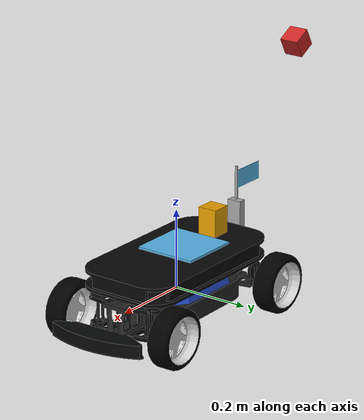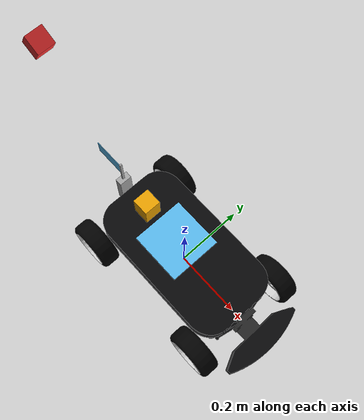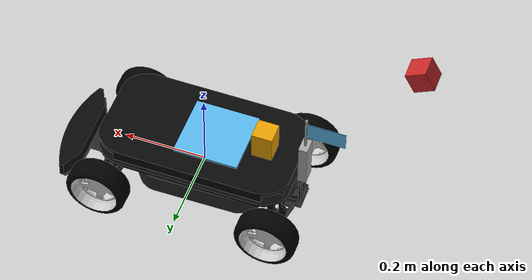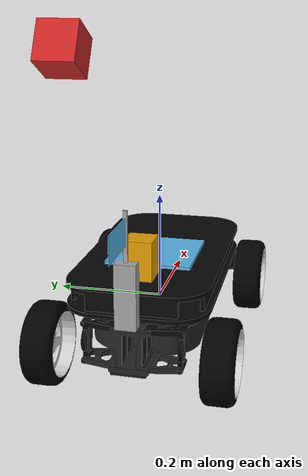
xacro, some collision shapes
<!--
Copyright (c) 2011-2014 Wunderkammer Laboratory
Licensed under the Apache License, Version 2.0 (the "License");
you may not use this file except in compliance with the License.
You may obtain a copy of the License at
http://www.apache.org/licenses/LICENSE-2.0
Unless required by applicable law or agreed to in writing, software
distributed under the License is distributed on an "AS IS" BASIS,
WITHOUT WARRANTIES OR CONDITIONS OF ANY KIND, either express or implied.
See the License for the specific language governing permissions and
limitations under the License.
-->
<?xml version="1.0"?>

<robot name="em_3905" xmlns:xacro="http://www.ros.org/wiki/xacro">
  <!-- Degree-to-radian conversions -->
  <xacro:property name="degrees_45" value="0.785398163"/>
  <xacro:property name="degrees_90" value="1.57079633"/>

  <!-- chassis_length is measured along the x axis, chassis_width
       along the y axis, and chassis_height along the z axis. -->
  <xacro:property name="chassis_length" value="0.258"/>
  <xacro:property name="chassis_width" value="0.168"/>
  <xacro:property name="chassis_height" value="0.05"/>
  <xacro:property name="chassis_mass" value="3.5"/>

  <xacro:property name="battery_x_offset" value="0.055"/>
  <xacro:property name="battery_dist" value="0.065"/>
  <xacro:property name="battery_comp_depth" value="0.02"/>
  <xacro:property name="battery_comp_angle" value="0.34906585"/>
  <xacro:property name="battery_length" value="0.16"/>
  <xacro:property name="battery_width" value="0.047"/>
  <xacro:property name="battery_height" value="0.024"/>
  <xacro:property name="battery_mass" value="0.5025"/>

  <xacro:property name="hub_dia" value="0.09652"/>
  <xacro:property name="tire_dia" value="0.14605"/>
  <xacro:property name="tire_width" value="0.0855"/>
  <xacro:property name="hex_hub_depth" value="0.01445"/>
  <xacro:property name="wheel_mass" value="0.29"/>

  <xacro:property name="wheelbase" value="0.42"/>
  <xacro:property name="hex_hub_dist" value="0.365"/>
  <xacro:property name="axle_length" value="0.03"/>
  <xacro:property name="wheel_travel" value="0.084"/>
  <xacro:property name="shock_z_offset" value="0.0655"/>

  <xacro:property name="shock_eff_limit" value="22.5106"/>
  <xacro:property name="shock_vel_limit" value="1000"/>

  <xacro:property name="axle_eff_limit" value="5.12766"/>
  <xacro:property name="axle_vel_limit" value="244.8696"/>

  <!-- These constants are used to simulate a Traxxas 2056 servo operated at
       6 V. servo_stall_torque is measured in N m. servo_no_load_speed is
       measured in rad/s. -->
  <xacro:property name="servo_stall_torque" value="0.5649"/>
  <xacro:property name="servo_no_load_speed" value="4.553"/>

  <!-- Null inertial element. This is needed to make the model work with
       Gazebo. -->
  <xacro:macro name="null_inertial">
    <inertial>
      <mass value="0.001"/>
      <inertia ixx="0.001" ixy="0" ixz="0" iyy="0.001" iyz="0" izz="0.001"/>
    </inertial>
  </xacro:macro>

  <!-- Inertia of a solid cuboid. Width is measured along the x axis, depth
       along the y axis, and height along the z axis. -->
  <xacro:macro name="solid_cuboid_inertial"
               params="width depth height mass *origin">
    <inertial>
      <xacro:insert_block name="origin"/>
      <mass value="${mass}"/>
      <inertia ixx="${mass * (depth * depth + height * height) / 12}"
               ixy="0" ixz="0"
               iyy="${mass * (width * width + height * height) / 12}"
               iyz="0"
               izz="${mass * (width * width + depth * depth) / 12}"/>
    </inertial>
  </xacro:macro>

  <xacro:macro name="thick_walled_tube_inertial"
               params="inner_rad outer_rad height mass">
    <inertial>
      <mass value="${mass}"/>
      <inertia ixx="${(1 / 12) * mass * (3 * (inner_rad * inner_rad +
                    outer_rad * outer_rad) + height * height)}"
               ixy="0" ixz="0"
               iyy="${(1 / 12) * mass * (3 * (inner_rad * inner_rad +
                    outer_rad * outer_rad) + height * height)}"
               iyz="0"
               izz="${mass * (inner_rad * inner_rad +
                    outer_rad * outer_rad) / 2}"/>
    </inertial>
  </xacro:macro>

  <!-- Battery -->
  <xacro:macro name="battery" params="prefix reflect">
    <joint name="chassis_to_${prefix}_battery" type="fixed">
      <parent link="chassis"/>
      <child link="${prefix}_battery_offset"/>
      <origin xyz="${battery_x_offset - battery_length / 2}
                   ${reflect * battery_dist / 2}
                   0"
              rpy="${reflect * battery_comp_angle} 0 0"/>
    </joint>

    <link name="${prefix}_battery_offset">
      <xacro:null_inertial/>
    </link>
    <joint name="offset_to_${prefix}_battery" type="fixed">
      <parent link="${prefix}_battery_offset"/>
      <child link="${prefix}_battery"/>
      <origin xyz="0
                   ${reflect * battery_width / 2}
                   ${(battery_height / 2) - battery_comp_depth}"/>
    </joint>

    <link name="${prefix}_battery">
      <visual>
        <geometry>
          <box size="${battery_length} ${battery_width} ${battery_height}"/>
        </geometry>
        <material name="battery_mat"/>
      </visual>

      <collision>
        <geometry>
          <box size="${battery_length} ${battery_width} ${battery_height}"/>
        </geometry>
      </collision>

      <xacro:solid_cuboid_inertial
         width="${battery_length}" depth="${battery_width}"
         height="${battery_height}" mass="${battery_mass}">
        <origin/>
      </xacro:solid_cuboid_inertial>
    </link>

    <gazebo reference="${prefix}_battery">
      <material>Gazebo/Blue</material>
    </gazebo>
  </xacro:macro>

  <!-- Shock absorber -->
  <xacro:macro name="shock"
               params="lr_prefix fr_prefix lr_reflect fr_reflect child">
    <joint name="${lr_prefix}_${fr_prefix}_shock" type="prismatic">
      <parent link="chassis"/>
      <child link="${child}"/>

      <origin xyz="${fr_reflect * wheelbase / 2}
                   ${lr_reflect * ((hex_hub_dist / 2) - axle_length)}
                   ${(wheel_travel / 2) - shock_z_offset}"/>
      <axis xyz="0 0 -1"/>
      <limit lower="${-wheel_travel / 2}" upper="${wheel_travel / 2}"
             effort="${shock_eff_limit}" velocity="${shock_vel_limit}"/>
    </joint>
    <transmission name="${lr_prefix}_${fr_prefix}_shock_trans">
      <type>transmission_interface/SimpleTransmission</type>
      <joint name="${lr_prefix}_${fr_prefix}_shock">
        <hardwareInterface>EffortJointInterface</hardwareInterface>
      </joint>
      <actuator name="${lr_prefix}_${fr_prefix}_shock_act">
        <!-- This hardwareInterface element exists for compatibility
             with ROS Hydro. -->
        <hardwareInterface>EffortJointInterface</hardwareInterface>
        <mechanicalReduction>1</mechanicalReduction>
      </actuator>
    </transmission>
  </xacro:macro>

  <!-- The "wheel" macro defines an axle carrier, axle, and wheel. -->
  <xacro:macro name="wheel" params="lr_prefix fr_prefix lr_reflect">
    <link name="${lr_prefix}_${fr_prefix}_axle_carrier">
      <xacro:null_inertial/>
    </link>

    <!-- The left and right axles have the same axis so that identical
         rotation values cause the wheels to rotate in the same direction. -->
    <joint name="${lr_prefix}_${fr_prefix}_axle" type="continuous">
      <parent link="${lr_prefix}_${fr_prefix}_axle_carrier"/>
      <child link="${lr_prefix}_${fr_prefix}_wheel"/>
      <origin rpy="${degrees_90} 0 0"/>
      <axis xyz="0 0 -1"/>
      <limit effort="${axle_eff_limit}" velocity="${axle_vel_limit}"/>
    </joint>
    <transmission name="${lr_prefix}_${fr_prefix}_axle_trans">
      <type>transmission_interface/SimpleTransmission</type>
      <joint name="${lr_prefix}_${fr_prefix}_axle">
        <hardwareInterface>EffortJointInterface</hardwareInterface>
      </joint>
      <actuator name="${lr_prefix}_${fr_prefix}_axle_act">
        <!-- This hardwareInterface element exists for compatibility
             with ROS Hydro. -->
        <hardwareInterface>EffortJointInterface</hardwareInterface>
        <mechanicalReduction>1</mechanicalReduction>
      </actuator>
    </transmission>

    <link name="${lr_prefix}_${fr_prefix}_wheel">
      <visual>
        <origin xyz="0
                     ${lr_reflect * (axle_length - (tire_width /
                     2 - hex_hub_depth))}
                     0"/>
        <geometry>
          <mesh filename="package://ackermann_vehicle_description/meshes/tire.dae"/>
        </geometry>
      </visual>

      <collision>
        <origin xyz="0
                     ${lr_reflect * (axle_length - (tire_width /
                     2 - hex_hub_depth))}
                     0"/>
        <geometry>
          <cylinder radius="${tire_dia / 2}" length="${tire_width}"/>
        </geometry>
      </collision>

      <xacro:thick_walled_tube_inertial
          inner_rad="${hub_dia / 2}" outer_rad="${tire_dia / 2}"
          height="${tire_width}" mass="${wheel_mass}"/>
    </link>
  </xacro:macro>

  <!-- Front wheel -->
  <xacro:macro name="front_wheel"
               params="lr_prefix fr_prefix lr_reflect fr_reflect">
    <xacro:shock lr_prefix="${lr_prefix}" fr_prefix="${fr_prefix}"
                 lr_reflect="${lr_reflect}" fr_reflect="${fr_reflect}"
                 child="${lr_prefix}_steering_link"/>

    <link name="${lr_prefix}_steering_link">
      <xacro:null_inertial/>
    </link>

    <joint name="${lr_prefix}_steering_joint" type="revolute">
      <parent link="${lr_prefix}_steering_link"/>
      <child link="${lr_prefix}_${fr_prefix}_axle_carrier"/>
      <axis xyz="0 0 1"/>
      <limit lower="${-degrees_45}" upper="${degrees_45}"
             effort="${servo_stall_torque}" velocity="${servo_no_load_speed}"/>
    </joint>
    <transmission name="${lr_prefix}_steering_trans">
      <type>transmission_interface/SimpleTransmission</type>
      <joint name="${lr_prefix}_steering_joint">
        <hardwareInterface>EffortJointInterface</hardwareInterface>
      </joint>
      <actuator name="${lr_prefix}_steering_act">
        <!-- This hardwareInterface element exists for compatibility
             with ROS Hydro. -->
        <hardwareInterface>EffortJointInterface</hardwareInterface>
        <mechanicalReduction>1</mechanicalReduction>
      </actuator>
    </transmission>

    <xacro:wheel lr_prefix="${lr_prefix}" fr_prefix="${fr_prefix}"
                 lr_reflect="${lr_reflect}"/>
  </xacro:macro>

  <!-- Rear wheel -->
  <xacro:macro name="rear_wheel"
               params="lr_prefix fr_prefix lr_reflect fr_reflect">
    <xacro:shock lr_prefix="${lr_prefix}" fr_prefix="${fr_prefix}"
                 lr_reflect="${lr_reflect}" fr_reflect="${fr_reflect}"
                 child="${lr_prefix}_${fr_prefix}_axle_carrier"/>
    <xacro:wheel lr_prefix="${lr_prefix}" fr_prefix="${fr_prefix}"
                 lr_reflect="${lr_reflect}"/>
  </xacro:macro>

  <!-- base_link must have geometry so that its axes can be displayed in
       rviz. -->
  <link name="base_link">
    <visual>
      <geometry>
        <box size="0.01 0.01 0.01"/>
      </geometry>
      <material name="chassis_mat"/>
    </visual>
  </link>
  <gazebo reference="base_link">
    <material>Gazebo/Grey</material>
  </gazebo>

  <!-- Chassis -->
  <link name="chassis">
    <visual>
      <origin xyz="0 0 ${-chassis_height / 2}"/>
      <geometry>
        <!--box size="${chassis_length} ${chassis_width} ${chassis_height}"/-->
        <mesh filename="package://ackermann_vehicle_description/meshes/chassis.dae"/>
      </geometry>
    </visual>

    <collision>
      <origin xyz="0 0 ${-chassis_height / 2}"/>
      <geometry>
        <box size="${chassis_length} ${chassis_width} ${chassis_height}"/>
      </geometry>
    </collision>

    <xacro:solid_cuboid_inertial
        width="${chassis_length}" depth="${chassis_width}"
        height="${chassis_height}" mass="${chassis_mass}">
      <origin xyz="0 0 ${-chassis_height / 2}"/>
    </xacro:solid_cuboid_inertial>
  </link>

  <joint name="base_link_to_chassis" type="fixed">
    <parent link="base_link"/>
    <child link="chassis"/>
  </joint>

  <!-- Batteries -->
  <xacro:battery prefix="left" reflect="1"/>
  <xacro:battery prefix="right" reflect="-1"/>

  <!-- Wheels -->
  <xacro:front_wheel lr_prefix="left" fr_prefix="front"
                     lr_reflect="1" fr_reflect="1"/>
  <xacro:front_wheel lr_prefix="right" fr_prefix="front"
                     lr_reflect="-1" fr_reflect="1"/>
  <xacro:rear_wheel lr_prefix="left" fr_prefix="rear"
                    lr_reflect="1" fr_reflect="-1"/>
  <xacro:rear_wheel lr_prefix="right" fr_prefix="rear"
                    lr_reflect="-1" fr_reflect="-1"/>

  <gazebo>
    <plugin name="gazebo_ros_control" filename="libgazebo_ros_control.so"/>
  </gazebo>

  <link name="hokuyo_sensor_link" type="laser">
    <visual>
      <origin xyz="0 0 0" rpy="3.14 3.14 3.14"/>
      <geometry>
        <mesh filename="package://gazebo_plugins/test/multi_robot_scenario/meshes/laser/hokuyo.dae"/>
      </geometry>
    </visual>
    <collision>
      <origin xyz="0 0 0.0" />
      <geometry>
        <box size="0.05 0.05 0.07" />
      </geometry>
    </collision>
  </link>
  <joint name="laser_to_base" type="fixed">
    <origin xyz="-0.15 0 0.13"/>
    <parent link="base_link" />
    <child link="hokuyo_sensor_link"/>
  </joint>

  <gazebo reference="hokuyo_sensor_link">
    <sensor type="ray" name="laser">
      <pose>0 0 0 0 0 0</pose>
      <visualize>false</visualize>
      <update_rate>40</update_rate>
      <ray>
        <scan>
          <horizontal>
            <!-- The URG-04LX-UG01  has  683 steps with 0.35139 Degree resolution -->
            <samples>1080</samples>
            <resolution>1</resolution>
              <min_angle>-2.0944</min_angle> <!-- 120 Degree -->
              <max_angle>2.0944</max_angle>
          </horizontal>
        </scan>
        <range>
          <min>0.06</min> <!-- 0.06 from URG-04 specification -->
          <max>20.0</max>
          <resolution>0.01</resolution>
        </range>
        <noise>
          <type>gaussian</type>
          <mean>0.0</mean>
          <stddev>0.01</stddev>
        </noise>
      </ray>
      <plugin name="hokuyo_node" filename="libgazebo_ros_laser.so">
        <topicName>/scan</topicName>
        <frameName>laser</frameName>
      </plugin>
    </sensor>
  </gazebo>

  <link name="imu_sensor_link">
      <visual>
        <geometry>
          <box size="0.02 0.02 0.02"/>
        </geometry>
      </visual>
      <collision>
        <geometry>
          <box size="0.02 0.2 0.02"/>
        </geometry>
      </collision>
  </link>
  <joint name="imu_to_base" type="fixed">
      <origin xyz="0.08 0 0"/>
      <parent link="base_link" />
      <child link="imu_sensor_link"/>
  </joint>

  <gazebo>
    <plugin name="imu_plugin" filename="libgazebo_ros_imu.so">
        <alwaysOn>true</alwaysOn>
        <frameName>base_imu_link</frameName>
        <bodyName>imu_sensor_link</bodyName>
        <topicName>imu</topicName>
        <serviceName>imu_service</serviceName>
        <gaussianNoise>0.0</gaussianNoise>
        <updateRate>10.0</updateRate>
    </plugin>
  </gazebo>

  <!-- camera -->
  <xacro:property name="camera_link" value="0.05" /> <!-- Size of square 'camera' box -->
  <joint name="camera_joint" type="fixed">
    <axis xyz="0 1 0" />
    <origin xyz="-0.5 0 0.5" rpy="0 0.5 0"/>
    <parent link="base_link"/>
    <child link="camera_link"/>
  </joint>

  <!-- Camera -->
  <link name="camera_link">
    <collision>
      <origin xyz="0 0 0" rpy="0 0 0"/>
      <geometry>
    <box size="${camera_link} ${camera_link} ${camera_link}"/>
      </geometry>
    </collision>

    <visual>
      <origin xyz="0 0 0" rpy="0 0 0"/>
      <geometry>
    <box size="${camera_link} ${camera_link} ${camera_link}"/>
      </geometry>
      <material name="red"/>
    </visual>

    <inertial>
      <mass value="1e-5" />
      <origin xyz="0 0 0" rpy="0 0 0"/>
      <inertia ixx="1e-6" ixy="0" ixz="0" iyy="1e-6" iyz="0" izz="1e-6" />
    </inertial>
  </link>

  <gazebo reference="camera_link">
    <sensor type="camera" name="top_view">
      <update_rate>30.0</update_rate>
      <camera name="head">
        <horizontal_fov>1.3962634</horizontal_fov>
        <image>
          <width>640</width>
          <height>480</height>
          <format>R8G8B8</format>
        </image>
        <clip>
          <near>0.02</near>
          <far>300</far>
        </clip>
        <noise>
          <type>gaussian</type>
          <!-- Noise is sampled independently per pixel on each frame.
               That pixel's noise value is added to each of its color
               channels, which at that point lie in the range [0,1]. -->
          <mean>0.0</mean>
          <stddev>0.007</stddev>
        </noise>
      </camera>
      <plugin name="camera_controller" filename="libgazebo_ros_camera.so">
        <alwaysOn>true</alwaysOn>
        <updateRate>0.0</updateRate>
        <cameraName>top_cam</cameraName>
        <imageTopicName>image_raw</imageTopicName>
        <cameraInfoTopicName>camera_info</cameraInfoTopicName>
        <frameName>camera_link</frameName>
        <hackBaseline>0.07</hackBaseline>
        <distortionK1>0.0</distortionK1>
        <distortionK2>0.0</distortionK2>
        <distortionK3>0.0</distortionK3>
        <distortionT1>0.0</distortionT1>
        <distortionT2>0.0</distortionT2>
      </plugin>
    </sensor>
  </gazebo>

</robot>
